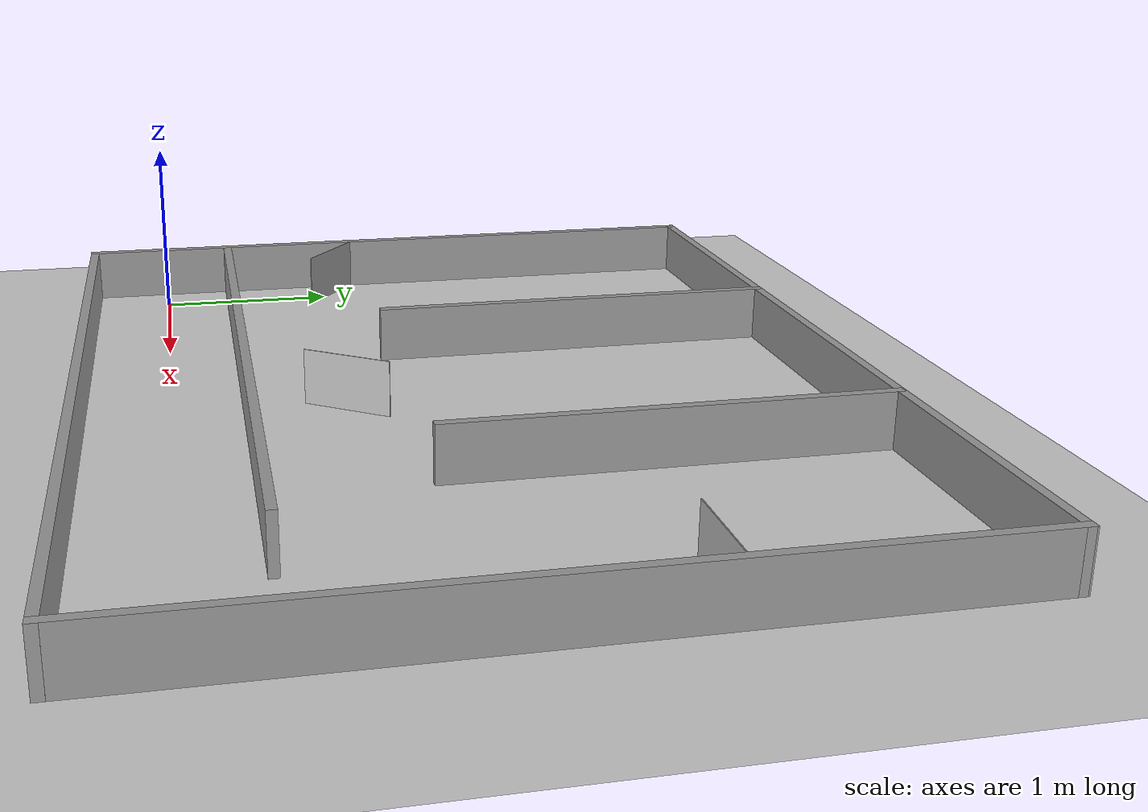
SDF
<sdf version="1.7">
 <world name="default">
  <light name="sun" type="directional">
   <pose>0 0 10 0 -0 0</pose>
   <diffuse>0.8 0.8 0.8 1</diffuse>
   <specular>0.2 0.2 0.2 1</specular>
   <attenuation>
    <range>1000</range>
    <constant>0.9</constant>
    <linear>0.01</linear>
    <quadratic>0.001</quadratic>
   </attenuation>
   <direction>-0.5 0.1 -0.9</direction>
   <spot><inner_angle>0</inner_angle><outer_angle>0</outer_angle><falloff>0</falloff></spot>
  </light>
  <model name="ground_plane">
   <static>1</static>
   <link name="link">
    <collision name="collision">
     <geometry><plane><normal>0 0 1</normal><size>100 100</size></plane></geometry>
     <surface><friction><ode><mu>100</mu><mu2>50</mu2></ode></friction></surface>
    </collision>
    <visual name="visual">
     <cast_shadows>0</cast_shadows>
     <geometry><plane><normal>0 0 1</normal><size>100 100</size></plane></geometry>
     <material>
      <script><uri>file://media/materials/scripts/gazebo.material</uri><name>Gazebo/Grey</name></script>
     </material>
    </visual>
   </link>
  </model>
  <gravity>0 0 -9.8</gravity>
  <magnetic_field>6e-06 2.3e-05 -4.2e-05</magnetic_field>
  <atmosphere type="adiabatic"/>
  <physics type="ode">
   <max_step_size>0.001</max_step_size>
   <real_time_factor>1</real_time_factor>
   <real_time_update_rate>1000</real_time_update_rate>
  </physics>
  <scene><ambient>0.4 0.4 0.4 1</ambient><background>0.7 0.7 0.7 1</background><shadows>1</shadows></scene>
  <spherical_coordinates>
   <surface_model>EARTH_WGS84</surface_model>
   <latitude_deg>0</latitude_deg>
   <longitude_deg>0</longitude_deg>
   <elevation>0</elevation>
   <heading_deg>0</heading_deg>
  </spherical_coordinates>
  <model name="stopBoard">
   <static>1</static>
   <link name="board_link">
    <visual name="board_visual">
     <geometry><box><size>0.5 0.3 0.005</size></box></geometry>
     <pose>0 0 0.15 1.5708 -0 0</pose>
    </visual>
    <collision name="board_collision">
     <geometry><box><size>0.5 0.3 0.005</size></box></geometry>
     <pose>0 0 0.15 1.5708 -0 0</pose>
    </collision>
   </link>
   <pose>-0.058979 1.05846 0 0 0 -0.658389</pose>
  </model>
  <model name="test2">
   <pose>2.20398 2.07626 0 0 -0 0</pose>
   <link name="Wall_0">
    <collision name="Wall_0_Collision">
     <geometry><box><size>5.0001 0.05 0.3</size></box></geometry>
     <pose>0 0 0.15 0 -0 0</pose>
    </collision>
    <visual name="Wall_0_Visual">
     <pose>0 0 0.15 0 -0 0</pose>
     <geometry><box><size>5.0001 0.05 0.3</size></box></geometry>
     <material>
      <script><uri>file://media/materials/scripts/gazebo.material</uri><name>Gazebo/Grey</name></script>
      <ambient>1 1 1 1</ambient>
     </material>
     <meta><layer>0</layer></meta>
    </visual>
    <pose>0.004718 1.38753 0 0 -0 0</pose>
   </link>
   <link name="Wall_1">
    <collision name="Wall_1_Collision">
     <geometry><box><size>3.97 0.05 0.3</size></box></geometry>
     <pose>0 0 0.15 0 -0 0</pose>
    </collision>
    <visual name="Wall_1_Visual">
     <pose>0 0 0.15 0 -0 0</pose>
     <geometry><box><size>3.97 0.05 0.3</size></box></geometry>
     <material>
      <script><uri>file://media/materials/scripts/gazebo.material</uri><name>Gazebo/Grey</name></script>
      <ambient>1 1 1 1</ambient>
     </material>
     <meta><layer>0</layer></meta>
    </visual>
    <pose>2.47472 -0.572471 0 0 -0 -1.57335</pose>
   </link>
   <link name="Wall_11">
    <collision name="Wall_11_Collision">
     <geometry><box><size>2.3 0.05 0.3</size></box></geometry>
     <pose>0 0 0.15 0 -0 0</pose>
    </collision>
    <visual name="Wall_11_Visual">
     <pose>0 0 0.15 0 -0 0</pose>
     <geometry><box><size>2.3 0.05 0.3</size></box></geometry>
     <material>
      <script><uri>file://media/materials/scripts/gazebo.material</uri><name>Gazebo/Grey</name></script>
      <ambient>1 1 1 1</ambient>
     </material>
     <meta><layer>0</layer></meta>
    </visual>
    <pose>-0.870282 0.262529 0 0 -0 -1.5708</pose>
   </link>
   <link name="Wall_13">
    <collision name="Wall_13_Collision">
     <geometry><box><size>2.3 0.05 0.3</size></box></geometry>
     <pose>0 0 0.15 0 -0 0</pose>
    </collision>
    <visual name="Wall_13_Visual">
     <pose>0 0 0.15 0 -0 0</pose>
     <geometry><box><size>2.3 0.05 0.3</size></box></geometry>
     <material>
      <script><uri>file://media/materials/scripts/gazebo.material</uri><name>Gazebo/Grey</name></script>
      <ambient>1 1 1 1</ambient>
     </material>
     <meta><layer>0</layer></meta>
    </visual>
    <pose>0.944818 0.254529 0 0 -0 -1.5708</pose>
   </link>
   <link name="Wall_4">
    <collision name="Wall_4_Collision">
     <geometry><box><size>5 0.05 0.3</size></box></geometry>
     <pose>0 0 0.15 0 -0 0</pose>
    </collision>
    <visual name="Wall_4_Visual">
     <pose>0 0 0.15 0 -0 0</pose>
     <geometry><box><size>5 0.05 0.3</size></box></geometry>
     <material>
      <script><uri>file://media/materials/scripts/gazebo.material</uri><name>Gazebo/Grey</name></script>
      <ambient>1 1 1 1</ambient>
     </material>
     <meta><layer>0</layer></meta>
    </visual>
    <pose>-0.004782 -2.53247 0 0 -0 3.14159</pose>
   </link>
   <link name="Wall_5">
    <collision name="Wall_5_Collision">
     <geometry><box><size>3.97001 0.05 0.3</size></box></geometry>
     <pose>0 0 0.15 0 -0 0</pose>
    </collision>
    <visual name="Wall_5_Visual">
     <pose>0 0 0.15 0 -0 0</pose>
     <geometry><box><size>3.97001 0.05 0.3</size></box></geometry>
     <material>
      <script><uri>file://media/materials/scripts/gazebo.material</uri><name>Gazebo/Grey</name></script>
      <ambient>1 1 1 1</ambient>
     </material>
     <meta><layer>0</layer></meta>
    </visual>
    <pose>-2.47478 -0.572471 0 0 -0 1.5685</pose>
   </link>
   <link name="Wall_8">
    <collision name="Wall_8_Collision">
     <geometry><box><size>4.25 0.05 0.3</size></box></geometry>
     <pose>0 0 0.15 0 -0 0</pose>
    </collision>
    <visual name="Wall_8_Visual">
     <pose>0 0 0.15 0 -0 0</pose>
     <geometry><box><size>4.25 0.05 0.3</size></box></geometry>
     <material>
      <script><uri>file://media/materials/scripts/gazebo.material</uri><name>Gazebo/Grey</name></script>
      <ambient>1 1 1 1</ambient>
     </material>
     <meta><layer>0</layer></meta>
    </visual>
    <pose>-0.379282 -1.68247 0 0 -0 0</pose>
   </link>
   <static>1</static>
  </model>
  <model name="stopBoard_0">
   <static>1</static>
   <link name="board_link">
    <visual name="board_visual">
     <geometry><box><size>0.5 0.3 0.005</size></box></geometry>
     <pose>0 0 0.15 1.5708 -0 0</pose>
    </visual>
    <collision name="board_collision">
     <geometry><box><size>0.5 0.3 0.005</size></box></geometry>
     <pose>0 0 0.15 1.5708 -0 0</pose>
    </collision>
   </link>
   <pose>2.11894 0.903177 0 0 -0 0.961851</pose>
  </model>
  <model name="stopBoard_1">
   <static>1</static>
   <link name="board_link">
    <visual name="board_visual">
     <geometry><box><size>0.5 0.3 0.005</size></box></geometry>
     <pose>0 0 0.15 1.5708 -0 0</pose>
    </visual>
    <collision name="board_collision">
     <geometry><box><size>0.5 0.3 0.005</size></box></geometry>
     <pose>0 0 0.15 1.5708 -0 0</pose>
    </collision>
   </link>
   <pose>4.41921 2.08387 0 0 -0 0</pose>
  </model>
 </world>
</sdf>
